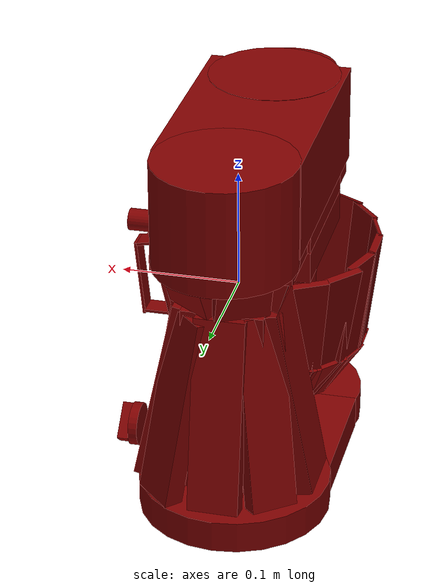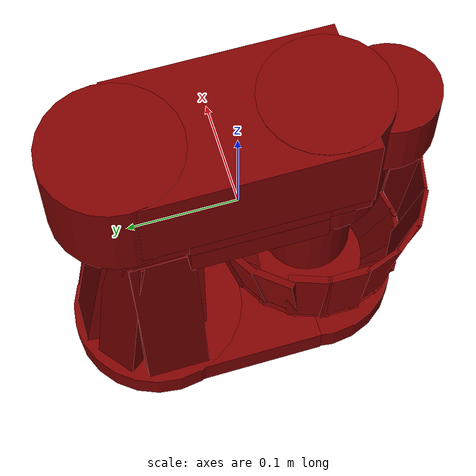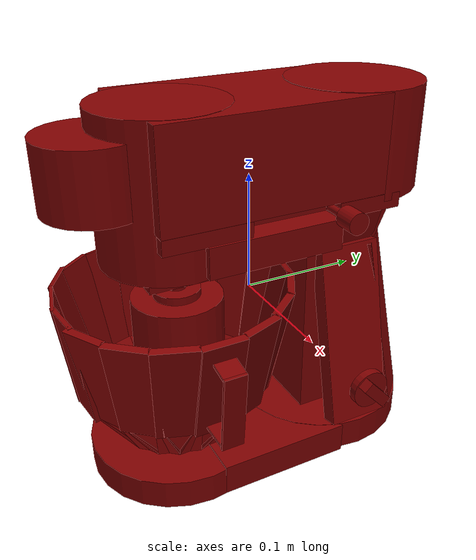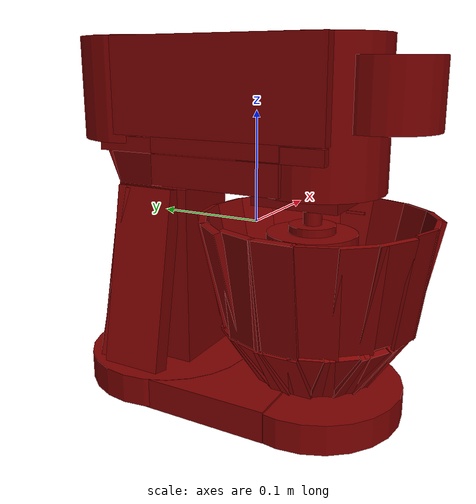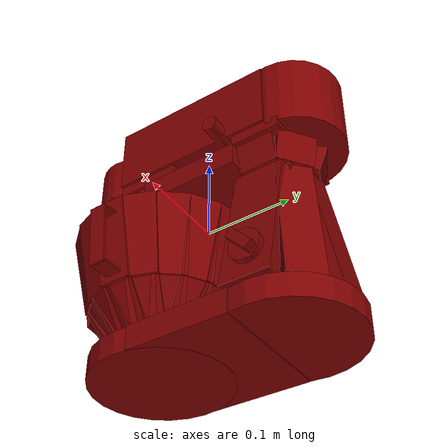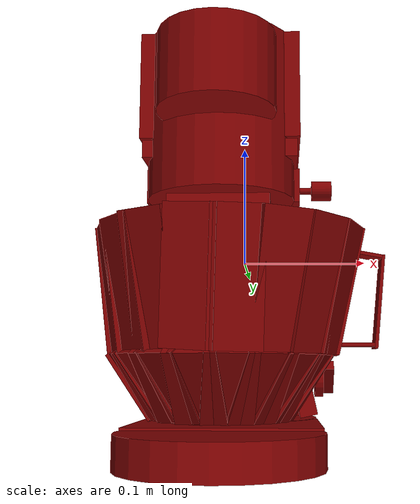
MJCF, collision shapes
<?xml version='1.0' encoding='UTF-8'?>
<mujoco model="model">
  <option timestep="0.002" gravity="0.0 0.0 -9.81"/>
  <compiler angle="radian"/>
  <asset>
    <mesh file="visuals/Blender001.obj" name="Blender001_vis"/>
    <mesh file="visuals/Body001.obj" name="Body001_vis"/>
    <mesh file="visuals/Container001.obj" name="Container001_vis"/>
    <mesh file="visuals/Konb001.obj" name="Konb001_vis"/>
    <mesh file="visuals/Lever001.obj" name="Lever001_vis"/>
    <mesh file="visuals/Lid001.obj" name="Lid001_vis"/>
    <texture file="visuals/T_BC001.png" name="Body001_material" type="2d"/>
    <material name="Body001_material" rgba="1 1 1 1.0" texture="Body001_material" shininess="0.1" specular="2"/>
    <texture file="visuals/T_BC001.png" name="Container001_material" type="2d"/>
    <material name="Container001_material" rgba="1 1 1 1.0" texture="Container001_material" shininess="0.4472135901451111" specular="0.9"/>
    <texture file="visuals/T_BC001.png" name="Konb001_material" type="2d"/>
    <material name="Konb001_material" rgba="1 1 1 1.0" texture="Konb001_material" shininess="0.4472135901451111" specular="0.9"/>
    <texture file="visuals/T_BC001.png" name="Lid001_material" type="2d"/>
    <material name="Lid001_material" rgba="1 1 1 1.0" texture="Lid001_material" shininess="0.4472135901451111" specular="0.9"/>
    <texture file="visuals/T_BC001.png" name="Blender001_material" type="2d"/>
    <material name="Blender001_material" rgba="1 1 1 1.0" texture="Blender001_material" shininess="0.1" specular="2"/>
    <texture file="visuals/T_BC001.png" name="Lever001_material" type="2d"/>
    <material name="Lever001_material" rgba="1 1 1 1.0" texture="Lever001_material" shininess="0.4472135901451111" specular="0.9"/>
  </asset>
  <default>
    <default class="visual">
      <geom conaffinity="0" contype="0" group="1" type="mesh"/>
    </default>
    <default class="collision">
      <geom group="0" rgba="0.5 0 0 0.5"/>
    </default>
    <default class="spawn">
      <geom group="0" rgba="1 1 1 0.5" contype="0" conaffinity="0"/>
      <site group="0" rgba="1 1 1 0.5"/>
    </default>
    <default class="region">
      <geom group="1" conaffinity="0" contype="0" rgba="0 1 0 0"/>
    </default>
  </default>
  <worldbody>
    <body>
      <body name="object">
        <geom mesh="Body001_vis" type="mesh" solimp="0.998 0.998 0.001" solref="0.001 1" friction="0.95 0.3 0.1" class="visual" material="Body001_material"/>
        <geom class="collision" type="cylinder" pos="-0.014580942690372467 -0.06684844195842743 -0.14681977033615112" size="0.07800706475973129 0.01318493764847517" quat="1.0 0.0 0.0 0.0" density="1000.0"/>
        <geom class="collision" type="cylinder" pos="-0.01694032922387123 0.08387935161590576 -0.14481328427791595" size="0.07943037897348404 0.013425509445369244" quat="1.0 0.0 0.0 0.0" density="1000.0"/>
        <geom class="collision" type="box" pos="-0.01487779151648283 0.004917993675917387 -0.14560161530971527" size="0.07702770084142685 0.05912737920880318 0.013953768648207188" quat="1.0 0.0 0.0 0.0" density="1000.0"/>
        <geom class="collision" type="box" pos="-0.014003120362758636 0.08040105551481247 -0.04902153089642525" size="0.03387362137436867 0.03569832071661949 0.08175280690193176" quat="1.0 0.0 0.0 0.0" density="1000.0"/>
        <geom class="collision" type="box" pos="0.03737712278962135 0.08232957124710083 -0.04902153089642525" size="0.007892224937677383 0.0284084752202034 0.08175291121006012" quat="0.9942047595977783 0.0 -0.10750292241573334 0.0" density="1000.0"/>
        <geom class="collision" type="box" pos="-0.04906065762042999 0.11863749474287033 -0.04941675812005997" size="0.007892224006354809 0.019647125154733658 0.08175291121006012" quat="0.8977483510971069 0.04135076701641083 0.08289728313684464 -0.4306577444076538" density="1000.0"/>
        <geom class="collision" type="box" pos="-0.015152031555771828 0.13365358114242554 -0.048464205116033554" size="0.007801813073456287 0.021083414554595947 0.0817185565829277" quat="0.6972964406013489 0.06290378421545029 0.06656637042760849 -0.7109076380729675" density="1000.0"/>
        <geom class="collision" type="box" pos="-0.06485528498888016 0.08232957124710083 -0.04805426299571991" size="0.007892224937677383 0.0284084752202034 0.08175291121006012" quat="0.9954656958580017 0.0 0.09512124955654144 0.0" density="1000.0"/>
        <geom class="collision" type="box" pos="0.022631056606769562 0.12137157469987869 -0.05278928577899933" size="0.007801811210811138 0.02074163220822811 0.08171853423118591" quat="0.38455402851104736 0.0907943993806839 0.026380909606814384 -0.9182475805282593" density="1000.0"/>
        <body name="Container001">
          <joint axis="0.0 0.0 1.0" pos="-7.916241884231567e-09 -0.06600316613912582 -0.05505426228046417" limited="true" name="Container001_joint" range="0.0 0.1" type="slide" damping="1" frictionloss="1" armature=".01" stiffness="0.05"/>
          <geom mesh="Container001_vis" type="mesh" solimp="0.998 0.998 0.001" solref="0.001 1" friction="0.95 0.3 0.1" class="visual" material="Container001_material"/>
          <geom class="collision" type="cylinder" pos="-0.014442413114011288 -0.066567562520504 -0.11977267265319824" size="0.04904469475150108 0.0037124804221093655" quat="1.0 0.0 0.0 0.0" density="1000.0"/>
          <geom class="collision" type="box" pos="-0.07779818773269653 -0.0665675550699234 -0.10006552189588547" size="0.0030533166136592627 0.018272677436470985 0.02831430919468403" quat="0.9554689526557922 -6.597572660448688e-15 -0.2950916588306427 -3.964817096857587e-08" density="1000.0"/>
          <geom class="collision" type="box" pos="-0.09760206937789917 -0.066567562520504 -0.031138285994529724" size="0.003058240283280611 0.018272677436470985 0.046837057918310165" quat="0.9980469942092896 6.768285931713081e-10 -0.062467340379953384 -1.4584673913020652e-08" density="1000.0"/>
          <geom class="collision" type="box" pos="-0.07397736608982086 -0.04489860683679581 -0.10006552189588547" size="0.0030533166136592627 0.018272679299116135 0.02831430919468403" quat="0.9409531950950623 -0.05124218016862869 -0.29060855507850647 -0.1659155637025833" density="1000.0"/>
          <geom class="collision" type="box" pos="-0.09218765050172806 -0.035860806703567505 -0.031138285994529724" size="0.003058240283280611 0.018272677436470985 0.046837057918310165" quat="0.9828017354011536 -0.011077865026891232 -0.06282565742731094 -0.17329439520835876" density="1000.0"/>
          <geom class="collision" type="box" pos="-0.06297575682401657 -0.025843247771263123 -0.10006552189588547" size="0.0030533166136592627 0.018272677436470985 0.02831430919468403" quat="0.8978471159934998 -0.10092726349830627 -0.27729538083076477 -0.3267896771430969" density="1000.0"/>
          <geom class="collision" type="box" pos="-0.07995247840881348 -0.011274407617747784 -0.031138285994529724" size="0.003058240283280611 0.018272677436470985 0.046837057918310165" quat="0.9341279864311218 -0.03716619685292244 -0.1021132692694664 -0.33999478816986084" density="1000.0"/>
          <geom class="collision" type="box" pos="-0.04612031206488609 -0.011699839495122433 -0.10006552189588547" size="0.0030533166136592627 0.018272677436470985 0.02831430919468403" quat="0.8274604082107544 -0.14754579961299896 -0.25555679202079773 -0.4777345061302185" density="1000.0"/>
          <geom class="collision" type="box" pos="-0.057337842881679535 0.0093311108648777 -0.031138285994529724" size="0.003058240283280611 0.018272675573825836 0.04683705419301987" quat="0.86089688539505 -0.0543333999812603 -0.0941082090139389 -0.4970392882823944" density="1000.0"/>
          <geom class="collision" type="box" pos="-0.025444038212299347 -0.004174291156232357 -0.10006552189588547" size="0.0030533166136592627 0.018272675573825836 0.028314311057329178" quat="0.7319316267967224 -0.18968118727207184 -0.22605328261852264 -0.6141636967658997" density="1000.0"/>
          <geom class="collision" type="box" pos="-0.03003266453742981 0.02184903621673584 -0.031138285994529724" size="0.003058240283280611 0.018272677436470985 0.046837057918310165" quat="0.7615081071853638 -0.06984958797693253 -0.08324350416660309 -0.6389812231063843" density="1000.0"/>
          <geom class="collision" type="box" pos="-0.003440813859924674 -0.00417428370565176 -0.10006552189588547" size="0.0030533166136592627 0.018272677436470985 0.02831430919468403" quat="0.6141636371612549 -0.22605326771736145 -0.18968121707439423 -0.7319316864013672" density="1000.0"/>
          <geom class="collision" type="box" pos="0.0011477991938591003 0.02184903621673584 -0.031138285994529724" size="0.003058240283280611 0.018272677436470985 0.046837057918310165" quat="0.6389811635017395 -0.08324349671602249 -0.06984958052635193 -0.7615081071853638" density="1000.0"/>
          <geom class="collision" type="box" pos="0.017235465347766876 -0.011699824593961239 -0.10006552189588547" size="0.0030533168464899063 0.018272677436470985 0.028314311057329178" quat="0.4777344763278961 -0.25555679202079773 -0.14754579961299896 -0.8274604082107544" density="1000.0"/>
          <geom class="collision" type="box" pos="0.030447833240032196 0.011184707283973694 -0.031138285994529724" size="0.003058240283280611 0.018272677436470985 0.046837057918310165" quat="0.497038871049881 -0.0941082090139389 -0.054333336651325226 -0.8608971238136292" density="1000.0"/>
          <geom class="collision" type="box" pos="0.03409091383218765 -0.02584322914481163 -0.10006552189588547" size="0.0030533166136592627 0.018272677436470985 0.02831430919468403" quat="0.32678961753845215 -0.27729547023773193 -0.10092729330062866 -0.8978471159934998" density="1000.0"/>
          <geom class="collision" type="box" pos="0.05433344841003418 -0.008857689797878265 -0.031138285994529724" size="0.0030582405161112547 0.018272677436470985 0.046837057918310165" quat="0.3399949073791504 -0.1021132543683052 -0.03716619685292244 -0.934127926826477" density="1000.0"/>
          <geom class="collision" type="box" pos="0.04509253427386284 -0.04489857703447342 -0.10006552189588547" size="0.0030533166136592627 0.018272677436470985 0.028314311057329178" quat="0.16591550409793854 -0.2906084358692169 -0.0512421615421772 -0.940953254699707" density="1000.0"/>
          <geom class="collision" type="box" pos="0.07207242399454117 -0.03507869318127632 -0.03164425119757652" size="0.003058240283280611 0.018272677436470985 0.046837057918310165" quat="0.17261990904808044 -0.10701578110456467 -0.018869776278734207 -0.9789759516716003" density="1000.0"/>
          <geom class="collision" type="box" pos="0.04891335964202881 -0.06656752526760101 -0.10006552189588547" size="0.0030533166136592627 0.018272677436470985 0.02831430919468403" quat="7.631651754991253e-08 -0.2950914800167084 -3.581508423167179e-08 -0.955469012260437" density="1000.0"/>
          <geom class="collision" type="box" pos="0.0789976716041565 -0.06656754016876221 -0.0319480374455452" size="0.003058240283280611 0.018272677436470985 0.046837061643600464" quat="1.933776019313882e-07 0.10866650193929672 -1.954284201133305e-08 0.9940782785415649" density="1000.0"/>
          <geom class="collision" type="box" pos="0.045092541724443436 -0.0882364958524704 -0.10006552189588547" size="0.0030533166136592627 0.018272679299116135 0.028314311057329178" quat="0.16591569781303406 0.2906085252761841 -0.05124218016862869 0.9409531950950623" density="1000.0"/>
          <geom class="collision" type="box" pos="0.07203827798366547 -0.09804392606019974 -0.031636208295822144" size="0.003058240283280611 0.018272677436470985 0.046837057918310165" quat="0.17262002825737 0.10701579600572586 -0.018869787454605103 0.9789759516716003" density="1000.0"/>
          <geom class="collision" type="box" pos="0.034090928733348846 -0.10729185491800308 -0.10006552189588547" size="0.0030533166136592627 0.018272677436470985 0.02831430919468403" quat="0.32678985595703125 0.2772953510284424 -0.10092733055353165 0.897847056388855" density="1000.0"/>
          <geom class="collision" type="box" pos="0.05532605201005936 -0.1251102238893509 -0.03142498806118965" size="0.003058240283280611 0.018272677436470985 0.046837057918310165" quat="0.3399949073791504 0.10211323946714401 -0.03716619312763214 0.934127926826477" density="1000.0"/>
          <geom class="collision" type="box" pos="0.01723548024892807 -0.1214352548122406 -0.10006552189588547" size="0.0030533166136592627 0.018272677436470985 0.02831430919468403" quat="0.4777345657348633 0.2555568218231201 -0.14754582941532135 0.8274603486061096" density="1000.0"/>
          <geom class="collision" type="box" pos="0.03044787049293518 -0.1443197876214981 -0.031138285994529724" size="0.003058240283280611 0.018272677436470985 0.046837057918310165" quat="0.497038871049881 0.0941082090139389 -0.054333336651325226 0.8608971238136292" density="1000.0"/>
          <geom class="collision" type="box" pos="-0.003440787782892585 -0.12896080315113068 -0.10006552189588547" size="0.0030533166136592627 0.018272677436470985 0.02831430919468403" quat="0.6141636371612549 0.22605326771736145 -0.18968120217323303 0.7319316864013672" density="1000.0"/>
          <geom class="collision" type="box" pos="0.0025368689093738794 -0.1547960489988327 -0.030904969200491905" size="0.0019669700413942337 0.018272675573825836 0.04683705419301987" quat="0.6596176028251648 0.056232206523418427 -0.03808915987610817 0.748526394367218" density="1000.0"/>
          <geom class="collision" type="box" pos="-0.025444041937589645 -0.12896080315113068 -0.10006552189588547" size="0.0030533168464899063 0.018272677436470985 0.028314311057329178" quat="0.7319318056106567 0.18968117237091064 -0.22605329751968384 0.6141634583473206" density="1000.0"/>
          <geom class="collision" type="box" pos="-0.02836981788277626 -0.154037743806839 -0.029687408357858658" size="0.0013477850006893277 0.018272679299116135 0.046837057918310165" quat="0.7795469760894775 0.06233187019824982 -0.027360307052731514 0.6226336359977722" density="1000.0"/>
          <geom class="collision" type="box" pos="-0.04612031206488609 -0.1214352548122406 -0.10006552189588547" size="0.002324436791241169 0.018272677436470985 0.02831430919468403" quat="0.827460527420044 0.1475457102060318 -0.2555568516254425 0.477734237909317" density="1000.0"/>
          <geom class="collision" type="box" pos="-0.05619176849722862 -0.13887958228588104 -0.029748300090432167" size="0.0020478994119912386 0.018272675573825836 0.046837057918310165" quat="0.8608969449996948 0.05433332547545433 -0.09410806745290756 0.49703922867774963" density="1000.0"/>
          <geom class="collision" type="box" pos="-0.061998359858989716 -0.10647173225879669 -0.09919431805610657" size="0.0030533166136592627 0.018272677436470985 0.02831430919468403" quat="0.8978471755981445 0.10092725604772568 -0.27729538083076477 0.32678958773612976" density="1000.0"/>
          <geom class="collision" type="box" pos="-0.07586552947759628 -0.12299802899360657 -0.03071729652583599" size="0.0023287979420274496 0.018272675573825836 0.046837057918310165" quat="0.9356999397277832 0.03149515762925148 -0.08653219044208527 0.3405669927597046" density="1000.0"/>
          <geom class="collision" type="box" pos="-0.0735345259308815 -0.08807533234357834 -0.09974373877048492" size="0.001975598046556115 0.018272675573825836 0.028314314782619476" quat="0.9409531950950623 0.05124209448695183 -0.29060861468315125 0.16591539978981018" density="1000.0"/>
          <geom class="collision" type="box" pos="-0.09218763560056686 -0.09727431833744049 -0.031138285994529724" size="0.0015966965584084392 0.018272677436470985 0.046837061643600464" quat="0.9823905229568481 0.012159169651567936 -0.0689580887556076 0.1732219159603119" density="1000.0"/>
          <geom class="collision" type="box" pos="0.10262839496135712 -0.06656754016876221 -0.038990333676338196" size="0.0012405611341819167 0.009239234030246735 0.03438418358564377" quat="3.137307658107602e-07 0.049591243267059326 -1.9606334333843733e-08 0.9987695813179016" density="1000.0"/>
          <geom class="collision" type="box" pos="0.0928242951631546 -0.0665675476193428 -0.0036381289828568697" size="0.0012405610177665949 0.009239234030246735 0.012607527896761894" quat="-1.8591956418845257e-08 0.7702881097793579 1.492566639171855e-07 0.6376960277557373" density="1000.0"/>
          <geom class="collision" type="box" pos="0.08509723842144012 -0.06656754016876221 -0.07051164656877518" size="0.013905241154134274 0.009239234030246735 0.0012700586812570691" quat="1.0 0.0 0.0 0.0" density="1000.0"/>
        </body>
        <body name="Konb001">
          <joint axis="-1.0 0.0 0.0" pos="0.06908625364303589 0.08699596673250198 -0.0951121523976326" limited="true" name="Konb001_joint" range="0.0 4.6774823953448035" type="hinge" damping="1" frictionloss="1" armature=".01" stiffness="0.05"/>
          <geom mesh="Konb001_vis" type="mesh" solimp="0.998 0.998 0.001" solref="0.001 1" friction="0.95 0.3 0.1" class="visual" material="Konb001_material"/>
          <geom class="collision" type="cylinder" pos="0.06515433639287949 0.08701705932617188 -0.09516998380422592" size="0.01773526519536972 0.0037568730767816305" quat="0.70710688829422 -4.7503014855010406e-08 0.7071066498756409 4.750300064415569e-08" density="1000.0"/>
          <geom class="collision" type="box" pos="0.07329220324754715 0.08723969012498856 -0.09474460035562515" size="0.0056553129106760025 0.0053615812212228775 0.01538555882871151" quat="0.9296486377716064 0.36844727396965027 8.181172938429577e-17 1.6432197481111664e-24" density="1000.0"/>
        </body>
        <body name="Lid001">
          <joint axis="-1.0 0.0 0.0" pos="-0.014517385512590408 0.1340997964143753 0.028583308681845665" limited="true" name="Lid001_joint" range="0.0 1.5707963267948966" type="hinge" damping="1" frictionloss="1" armature=".01" stiffness="0.05"/>
          <geom mesh="Lid001_vis" type="mesh" solimp="0.998 0.998 0.001" solref="0.001 1" friction="0.95 0.3 0.1" class="visual" material="Lid001_material"/>
          <geom class="collision" type="box" pos="-0.013978870585560799 0.003330816514790058 0.12151414155960083" size="0.059515997767448425 0.09693325310945511 0.04065350815653801" quat="1.0 0.0 0.0 0.0" density="1000.0"/>
          <geom class="collision" type="cylinder" pos="-0.014580942690372467 0.10533460974693298 0.11810025572776794" size="0.05888476222753525 0.044684380292892456" quat="1.0 0.0 0.0 0.0" density="1000.0"/>
          <geom class="collision" type="cylinder" pos="-0.014580942690372467 -0.06684844195842743 0.10018189251422882" size="0.05546166002750397 0.062283482402563095" quat="1.0 0.0 0.0 0.0" density="1000.0"/>
          <geom class="collision" type="box" pos="-0.013978870585560799 0.0022604581899940968 0.05343589186668396" size="0.05951599404215813 0.05912737920880318 0.013261141255497932" quat="1.0 0.0 0.0 0.0" density="1000.0"/>
          <geom class="collision" type="box" pos="-0.02394462749361992 0.002260460751131177 0.07779663801193237" size="0.049417585134506226 0.0591273196041584 0.010310162790119648" quat="1.0 0.0 0.0 0.0" density="1000.0"/>
          <geom class="collision" type="box" pos="-0.014580942690372467 -0.05937452241778374 0.034661758691072464" size="0.03752787783741951 0.03752787783741951 0.007284394931048155" quat="1.0 0.0 0.0 0.0" density="1000.0"/>
          <geom class="collision" type="cylinder" pos="-0.013978870585560799 -0.12096917629241943 0.11764437705278397" size="0.04213531315326691 0.028308404609560966" quat="1.0 0.0 0.0 0.0" density="1000.0"/>
          <geom class="collision" type="cylinder" pos="-0.014580942690372467 -0.14331141114234924 0.11712029576301575" size="0.02004116401076317 0.007942813448607922" quat="0.7071068286895752 -0.7071067690849304 -1.5700922994638892e-16 5.926933650839829e-24" density="1000.0"/>
          <geom class="collision" type="cylinder" pos="-0.013978870585560799 0.08141055703163147 0.05414300784468651" size="0.03236949443817139 0.017058735713362694" quat="1.0 0.0 0.0 0.0" density="1000.0"/>
          <geom class="collision" type="box" pos="-0.014580942690372467 -0.060793690383434296 0.025373077020049095" size="0.011341221630573273 0.011341221630573273 0.0027488265186548233" quat="1.0 0.0 0.0 0.0" density="1000.0"/>
          <geom class="collision" type="box" pos="0.026539985090494156 0.08265221118927002 0.05414301156997681" size="0.007447761483490467 0.022549008950591087 0.017058733850717545" quat="0.9883102178573608 0.0 0.1524564027786255 0.0" density="1000.0"/>
          <geom class="collision" type="box" pos="0.010769743472337723 0.11667884886264801 0.05414301156997681" size="0.007447761949151754 0.022549008950591087 0.017058733850717545" quat="0.8785291910171509 -0.069834403693676 0.13552159070968628 0.452706903219223" density="1000.0"/>
          <geom class="collision" type="box" pos="-0.031878337264060974 0.12136368453502655 0.05414301156997681" size="0.007447761483490467 0.022549008950591087 0.017058733850717545" quat="0.5110110640525818 -0.1304953396320343 0.07882840186357498 0.8459460735321045" density="1000.0"/>
          <geom class="collision" type="box" pos="-0.055285289883613586 0.08540646731853485 0.05414301156997681" size="0.007447761483490467 0.022549008950591087 0.017058733850717545" quat="0.008073309436440468 0.15245124697685242 0.0012453856179490685 -0.9882772564888" density="1000.0"/>
          <geom class="collision" type="box" pos="-0.013978870585560799 -0.05575251206755638 0.07296803593635559" size="0.05736022815108299 0.03685789555311203 0.006563880015164614" quat="1.0 0.0 0.0 0.0" density="1000.0"/>
          <geom class="collision" type="box" pos="-0.013545981608331203 0.0878300815820694 0.07296803593635559" size="0.05736023187637329 0.029091166332364082 0.006563881412148476" quat="1.0 0.0 0.0 0.0" density="1000.0"/>
          <body name="Blender001">
            <joint axis="0.0 0.0 1.0" pos="-0.013481669127941132 -0.06079823896288872 -0.026386437937617302" limited="false" name="Blender001_joint" range="0 360" type="hinge" damping="1" frictionloss="1" armature=".01" stiffness="0.05"/>
            <geom mesh="Blender001_vis" type="mesh" solimp="0.998 0.998 0.001" solref="0.001 1" friction="0.95 0.3 0.1" class="visual" material="Blender001_material"/>
            <geom class="collision" type="cylinder" pos="-0.013676557689905167 -0.06078915297985077 -0.03309653699398041" size="0.03922392427921295 0.03408218175172806" quat="1.0 0.0 0.0 0.0" density="1000.0"/>
            <geom class="collision" type="cylinder" pos="-0.013676557689905167 -0.06078915297985077 0.003046877682209015" size="0.020283741876482964 0.004735451657325029" quat="1.0 0.0 0.0 0.0" density="1000.0"/>
            <geom class="collision" type="cylinder" pos="-0.013676557689905167 -0.06078915297985077 0.01313050463795662" size="0.007982873357832432 0.006899514701217413" quat="1.0 0.0 0.0 0.0" density="1000.0"/>
          </body>
          <body name="Lever001">
            <joint axis="0.0 -1.0 2.0663208033511182e-07" pos="0.054201848804950714 0.052541330456733704 0.07595966756343842" limited="true" name="Lever001_joint" range="0.0 0.065" type="slide" damping="1" frictionloss="1" armature=".01" stiffness="0.001"/>
            <geom mesh="Lever001_vis" type="mesh" solimp="0.998 0.998 0.001" solref="0.001 1" friction="0.95 0.3 0.1" class="visual" material="Lever001_material"/>
            <geom class="collision" type="cylinder" pos="0.068130724132061 0.052541330456733704 0.0759596899151802" size="0.008930088952183723 0.009075462818145752" quat="0.70710688829422 -4.7503014855010406e-08 0.7071066498756409 4.750300064415569e-08" density="1000.0"/>
            <geom class="collision" type="cylinder" pos="0.047908321022987366 0.052541330456733704 0.0759596899151802" size="0.0030484837479889393 0.011239361017942429" quat="0.70710688829422 -4.7503014855010406e-08 0.7071066498756409 4.750300064415569e-08" density="1000.0"/>
          </body>
        </body>
        <geom class="region" name="reg_main" type="box" pos="-0.014413177035748959 0.00714043527841568 1.4901161193847656e-08" size="0.07786944508552551 0.15833064913749695 0.16279304027557373"/>
      </body>
    </body>
  </worldbody>
  <actuator>
    <motor name="Container001_joint_actuator" joint="Container001_joint" gear="10"/>
    <motor name="Konb001_joint_actuator" joint="Konb001_joint" gear="10"/>
    <motor name="Lid001_joint_actuator" joint="Lid001_joint" gear="10"/>
    <motor name="Blender001_joint_actuator" joint="Blender001_joint" gear="10"/>
    <motor name="Lever001_joint_actuator" joint="Lever001_joint" gear="10"/>
  </actuator>
</mujoco>
